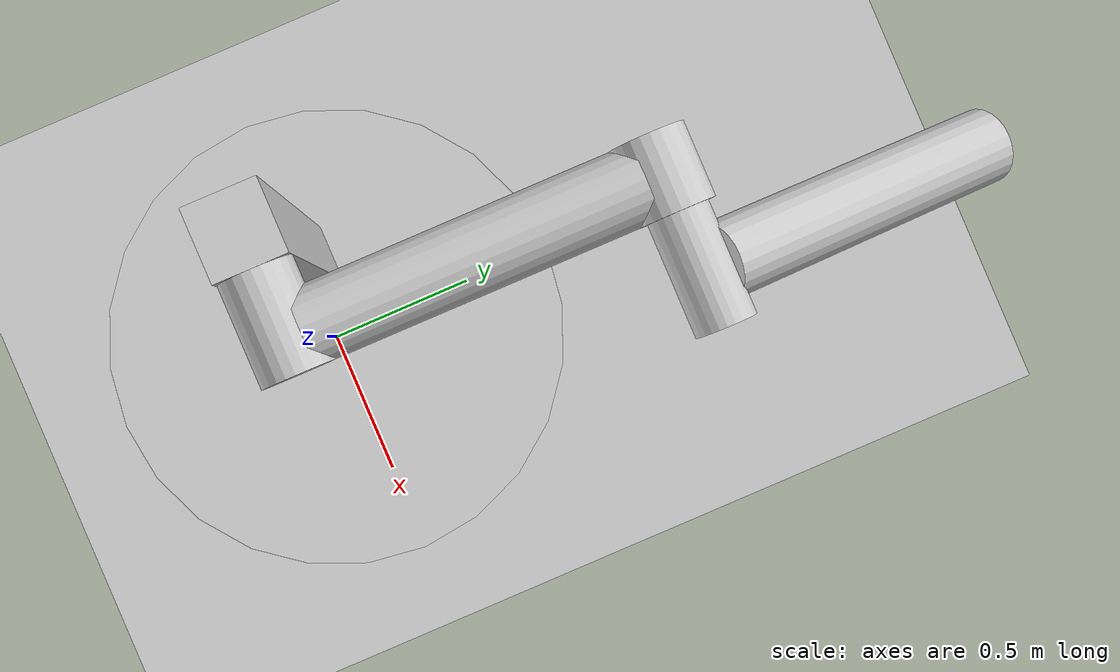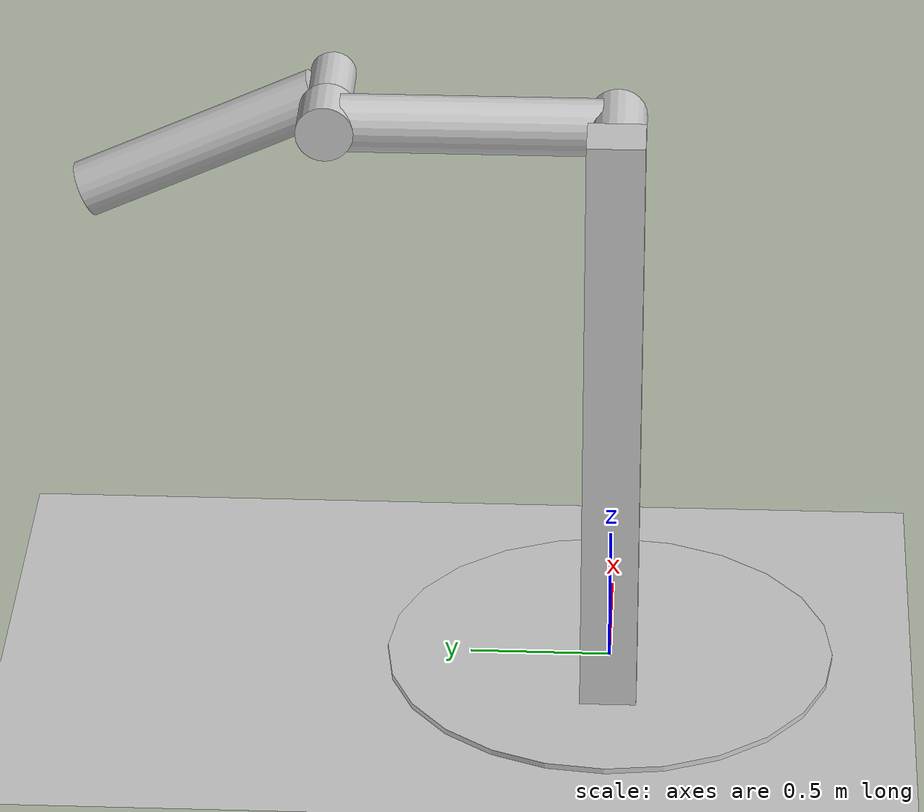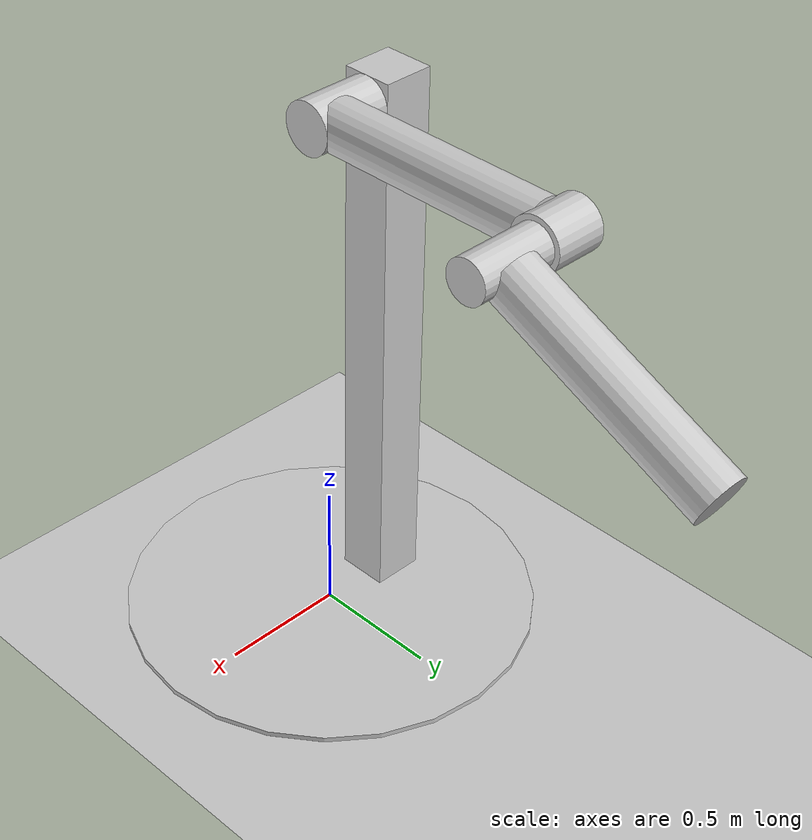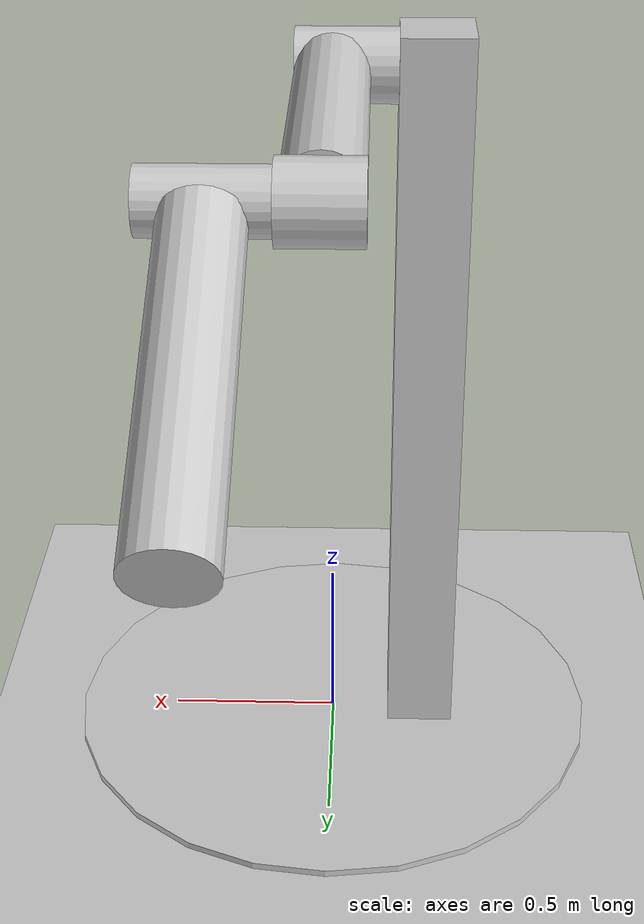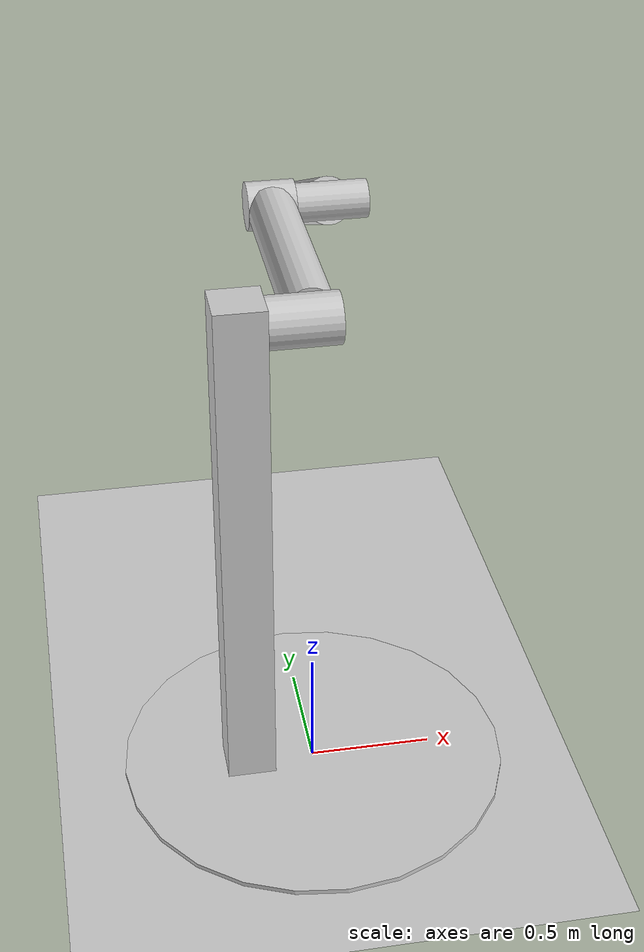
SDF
<?xml version="1.0" ?>

<sdf version="1.6">
  <world name="video_record_pendulum">

    <physics name="1ms" type="ignored">
      <max_step_size>0.001</max_step_size>
      <real_time_factor>1.0</real_time_factor>
    </physics>
    <plugin
      filename="gz-sim-physics-system"
      name="gz::sim::systems::Physics">
    </plugin>
    <plugin
      filename="gz-sim-user-commands-system"
      name="gz::sim::systems::UserCommands">
    </plugin>
    <plugin
      filename="gz-sim-scene-broadcaster-system"
      name="gz::sim::systems::SceneBroadcaster">
    </plugin>

    <gui fullscreen="0">

      <!-- 3D scene -->
      <plugin filename="MinimalScene" name="3D View">
        <gz-gui>
          <title>3D View</title>
          <property type="bool" key="showTitleBar">false</property>
          <property type="string" key="state">docked</property>
        </gz-gui>

        <engine>ogre2</engine>
        <scene>scene</scene>
        <ambient_light>0.4 0.4 0.4</ambient_light>
        <background_color>0.8 0.8 0.8</background_color>
        <camera_pose>-6 0 6 0 0.5 0</camera_pose>
      </plugin>

      <!-- Plugins that add functionality to the scene -->
      <plugin filename="EntityContextMenuPlugin" name="Entity context menu">
        <gz-gui>
          <property key="state" type="string">floating</property>
          <property key="width" type="double">5</property>
          <property key="height" type="double">5</property>
          <property key="showTitleBar" type="bool">false</property>
        </gz-gui>
      </plugin>
      <plugin filename="GzSceneManager" name="Scene Manager">
        <gz-gui>
          <property key="resizable" type="bool">false</property>
          <property key="width" type="double">5</property>
          <property key="height" type="double">5</property>
          <property key="state" type="string">floating</property>
          <property key="showTitleBar" type="bool">false</property>
        </gz-gui>
      </plugin>
      <plugin filename="InteractiveViewControl" name="Interactive view control">
        <gz-gui>
          <property key="resizable" type="bool">false</property>
          <property key="width" type="double">5</property>
          <property key="height" type="double">5</property>
          <property key="state" type="string">floating</property>
          <property key="showTitleBar" type="bool">false</property>
        </gz-gui>
      </plugin>
      <plugin filename="SelectEntities" name="Select Entities">
        <gz-gui>
          <anchors target="Select entities">
            <line own="right" target="right"/>
            <line own="top" target="top"/>
          </anchors>
          <property key="resizable" type="bool">false</property>
          <property key="width" type="double">5</property>
          <property key="height" type="double">5</property>
          <property key="state" type="string">floating</property>
          <property key="showTitleBar" type="bool">false</property>
        </gz-gui>
      </plugin>
      <plugin filename="VisualizationCapabilities" name="Visualization Capabilities">
        <gz-gui>
          <property key="resizable" type="bool">false</property>
          <property key="width" type="double">5</property>
          <property key="height" type="double">5</property>
          <property key="state" type="string">floating</property>
          <property key="showTitleBar" type="bool">false</property>
        </gz-gui>
      </plugin>
      <!-- Insert simple shapes -->
      <plugin filename="Shapes" name="Shapes">
        <gz-gui>
          <property key="resizable" type="bool">false</property>
          <property key="x" type="double">0</property>
          <property key="y" type="double">0</property>
          <property key="width" type="double">250</property>
          <property key="height" type="double">50</property>
          <property key="state" type="string">floating</property>
          <property key="showTitleBar" type="bool">false</property>
          <property key="cardBackground" type="string">#666666</property>
        </gz-gui>
      </plugin>

      <!-- Insert lights -->
      <plugin filename="Lights" name="Lights">
        <gz-gui>
          <property key="resizable" type="bool">false</property>
          <property key="x" type="double">250</property>
          <property key="y" type="double">0</property>
          <property key="width" type="double">150</property>
          <property key="height" type="double">50</property>
          <property key="state" type="string">floating</property>
          <property key="showTitleBar" type="bool">false</property>
          <property key="cardBackground" type="string">#666666</property>
        </gz-gui>
      </plugin>

      <!-- Translate / rotate -->
      <plugin filename="TransformControl" name="Transform control">
        <gz-gui>
          <property key="resizable" type="bool">false</property>
          <property key="x" type="double">0</property>
          <property key="y" type="double">50</property>
          <property key="width" type="double">250</property>
          <property key="height" type="double">50</property>
          <property key="state" type="string">floating</property>
          <property key="showTitleBar" type="bool">false</property>
          <property key="cardBackground" type="string">#777777</property>
        </gz-gui>
      </plugin>
      <!-- Screenshot -->
      <plugin filename="Screenshot" name="Screenshot">
        <gz-gui>
          <property key="resizable" type="bool">false</property>
          <property key="x" type="double">250</property>
          <property key="y" type="double">50</property>
          <property key="width" type="double">50</property>
          <property key="height" type="double">50</property>
          <property key="state" type="string">floating</property>
          <property key="showTitleBar" type="bool">false</property>
          <property key="cardBackground" type="string">#777777</property>
        </gz-gui>
      </plugin>
      <plugin filename="CameraTracking" name="Camera Tracking">
        <gz-gui>
          <property key="resizable" type="bool">false</property>
          <property key="width" type="double">5</property>
          <property key="height" type="double">5</property>
          <property key="state" type="string">floating</property>
          <property key="showTitleBar" type="bool">false</property>
        </gz-gui>
      </plugin>
      <!-- World control -->
      <plugin filename="WorldControl" name="World control">
        <gz-gui>
          <title>World control</title>
          <property type="bool" key="showTitleBar">false</property>
          <property type="bool" key="resizable">false</property>
          <property type="double" key="height">72</property>
          <property type="double" key="z">1</property>

          <property type="string" key="state">floating</property>
          <anchors target="3D View">
            <line own="left" target="left"/>
            <line own="bottom" target="bottom"/>
          </anchors>
        </gz-gui>

        <play_pause>true</play_pause>
        <step>true</step>
        <start_paused>true</start_paused>
        <use_event>true</use_event>

      </plugin>

      <!-- World statistics -->
      <plugin filename="WorldStats" name="World stats">
        <gz-gui>
          <title>World stats</title>
          <property type="bool" key="showTitleBar">false</property>
          <property type="bool" key="resizable">false</property>
          <property type="double" key="height">110</property>
          <property type="double" key="width">290</property>
          <property type="double" key="z">1</property>

          <property type="string" key="state">floating</property>
          <anchors target="3D View">
            <line own="right" target="right"/>
            <line own="bottom" target="bottom"/>
          </anchors>
        </gz-gui>

        <sim_time>true</sim_time>
        <real_time>true</real_time>
        <real_time_factor>true</real_time_factor>
        <iterations>true</iterations>
      </plugin>

      <!-- Video recorder -->
      <plugin filename="VideoRecorder" name="VideoRecorder">
        <gz-gui>
          <property key="resizable" type="bool">false</property>
          <property key="x" type="double">300</property>
          <property key="y" type="double">50</property>
          <property key="width" type="double">50</property>
          <property key="height" type="double">50</property>
          <property key="state" type="string">floating</property>
          <property key="showTitleBar" type="bool">false</property>
          <property key="cardBackground" type="string">#777777</property>
        </gz-gui>

        <record_video>
          <use_sim_time>true</use_sim_time>
          <lockstep>false</lockstep>
          <bitrate>4000000</bitrate>
        </record_video>
      </plugin>
    </gui>

    <light type="directional" name="sun">
      <cast_shadows>true</cast_shadows>
      <pose>0 0 10 0 0 0</pose>
      <diffuse>1 1 1 1</diffuse>
      <specular>0.5 0.5 0.5 1</specular>
      <direction>-0.5 0.1 -0.9</direction>
    </light>

    <model name="ground_plane">
      <static>true</static>
      <link name="link">
        <collision name="collision">
          <geometry>
            <plane>
              <normal>0 0 1</normal>
              <size>100 100</size>
            </plane>
          </geometry>
        </collision>
        <visual name="visual">
          <geometry>
            <plane>
              <normal>0 0 1</normal>
              <size>100 100</size>
            </plane>
          </geometry>
          <material>
            <ambient>0.8 0.8 0.8 1</ambient>
            <diffuse>0.8 0.8 0.8 1</diffuse>
            <specular>0.8 0.8 0.8 1</specular>
          </material>
        </visual>
      </link>
    </model>

    <model name="double_pendulum_with_base">
      <link name="base">
        <inertial>
          <mass>100</mass>
        </inertial>
        <visual name="vis_plate_on_ground">
          <pose>0 0 0.01 0 0 0</pose>
          <geometry>
            <cylinder>
              <radius>0.8</radius>
              <length>0.02</length>
            </cylinder>
          </geometry>
          <material>
            <ambient>0.8 0.8 0.8 1</ambient>
            <diffuse>0.8 0.8 0.8 1</diffuse>
            <specular>0.8 0.8 0.8 1</specular>
          </material>
        </visual>
        <visual name="vis_pole">
          <pose>-0.275 0 1.1 0 0 0</pose>
          <geometry>
            <box>
              <size>0.2 0.2 2.2</size>
            </box>
          </geometry>
          <material>
            <ambient>0.8 0.8 0.8 1</ambient>
            <diffuse>0.8 0.8 0.8 1</diffuse>
            <specular>0.8 0.8 0.8 1</specular>
          </material>
        </visual>
        <collision name="col_plate_on_ground">
          <pose>0 0 0.01 0 0 0</pose>
          <geometry>
            <cylinder>
              <radius>0.8</radius>
              <length>0.02</length>
            </cylinder>
          </geometry>
        </collision>
        <collision name="col_pole">
          <pose>-0.275 0 1.1 0 0 0</pose>
          <geometry>
            <box>
              <size>0.2 0.2 2.2</size>
            </box>
          </geometry>
        </collision>
      </link>
      <!-- upper link, length 1, IC -90 degrees -->
      <link name="upper_link">
        <pose>0 0 2.1 -1.5708 0 0</pose>
        <self_collide>0</self_collide>
        <inertial>
          <pose>0 0 0.5 0 0 0</pose>
        </inertial>
        <visual name="vis_upper_joint">
          <pose>-0.05 0 0 0 1.5708 0</pose>
          <geometry>
            <cylinder>
              <radius>0.1</radius>
              <length>0.3</length>
            </cylinder>
          </geometry>
          <material>
            <ambient>0.8 0.8 0.8 1</ambient>
            <diffuse>0.8 0.8 0.8 1</diffuse>
            <specular>0.8 0.8 0.8 1</specular>
          </material>
        </visual>
        <visual name="vis_lower_joint">
          <pose>0 0 1.0 0 1.5708 0</pose>
          <geometry>
            <cylinder>
              <radius>0.1</radius>
              <length>0.2</length>
            </cylinder>
          </geometry>
          <material>
            <ambient>0.8 0.8 0.8 1</ambient>
            <diffuse>0.8 0.8 0.8 1</diffuse>
            <specular>0.8 0.8 0.8 1</specular>
          </material>
        </visual>
        <visual name="vis_cylinder">
          <pose>0 0 0.5 0 0 0</pose>
          <geometry>
            <cylinder>
              <radius>0.1</radius>
              <length>0.9</length>
            </cylinder>
          </geometry>
          <material>
            <ambient>0.8 0.8 0.8 1</ambient>
            <diffuse>0.8 0.8 0.8 1</diffuse>
            <specular>0.8 0.8 0.8 1</specular>
          </material>
        </visual>
        <collision name="col_upper_joint">
          <pose>-0.05 0 0 0 1.5708 0</pose>
          <geometry>
            <cylinder>
              <radius>0.1</radius>
              <length>0.3</length>
            </cylinder>
          </geometry>
        </collision>
        <collision name="col_lower_joint">
          <pose>0 0 1.0 0 1.5708 0</pose>
          <geometry>
            <cylinder>
              <radius>0.1</radius>
              <length>0.2</length>
            </cylinder>
          </geometry>
        </collision>
        <collision name="col_cylinder">
          <pose>0 0 0.5 0 0 0</pose>
          <geometry>
            <cylinder>
              <radius>0.1</radius>
              <length>0.9</length>
            </cylinder>
          </geometry>
        </collision>
      </link>
      <!-- lower link, length 1, IC ~-120 degrees more -->
      <link name="lower_link">
        <pose>0.25 1.0 2.1 -2 0 0</pose>
        <self_collide>0</self_collide>
        <inertial>
          <pose>0 0 0.5 0 0 0</pose>
        </inertial>
        <visual name="vis_lower_joint">
          <pose>0 0 0 0 1.5708 0</pose>
          <geometry>
            <cylinder>
              <radius>0.08</radius>
              <length>0.3</length>
            </cylinder>
          </geometry>
          <material>
            <ambient>0.8 0.8 0.8 1</ambient>
            <diffuse>0.8 0.8 0.8 1</diffuse>
            <specular>0.8 0.8 0.8 1</specular>
          </material>
        </visual>
        <visual name="vis_cylinder">
          <pose>0 0 0.5 0 0 0</pose>
          <geometry>
            <cylinder>
              <radius>0.1</radius>
              <length>0.9</length>
            </cylinder>
          </geometry>
          <material>
            <ambient>0.8 0.8 0.8 1</ambient>
            <diffuse>0.8 0.8 0.8 1</diffuse>
            <specular>0.8 0.8 0.8 1</specular>
          </material>
        </visual>
        <collision name="col_lower_joint">
          <pose>0 0 0 0 1.5708 0</pose>
          <geometry>
            <cylinder>
              <radius>0.08</radius>
              <length>0.3</length>
            </cylinder>
          </geometry>
        </collision>
        <collision name="col_cylinder">
          <pose>0 0 0.5 0 0 0</pose>
          <geometry>
            <cylinder>
              <radius>0.1</radius>
              <length>0.9</length>
            </cylinder>
          </geometry>
        </collision>
      </link>
      <!-- pin joint for upper link, at origin of upper link -->
      <joint name="upper_joint" type="revolute">
        <parent>base</parent>
        <child>upper_link</child>
        <axis>
          <xyz>1.0 0 0</xyz>
        </axis>
      </joint>
      <!-- pin joint for lower link, at origin of child link -->
      <joint name="lower_joint" type="revolute">
        <parent>upper_link</parent>
        <child>lower_link</child>
        <axis>
          <xyz>1.0 0 0</xyz>
        </axis>
      </joint>

    </model>

  </world>
</sdf>
